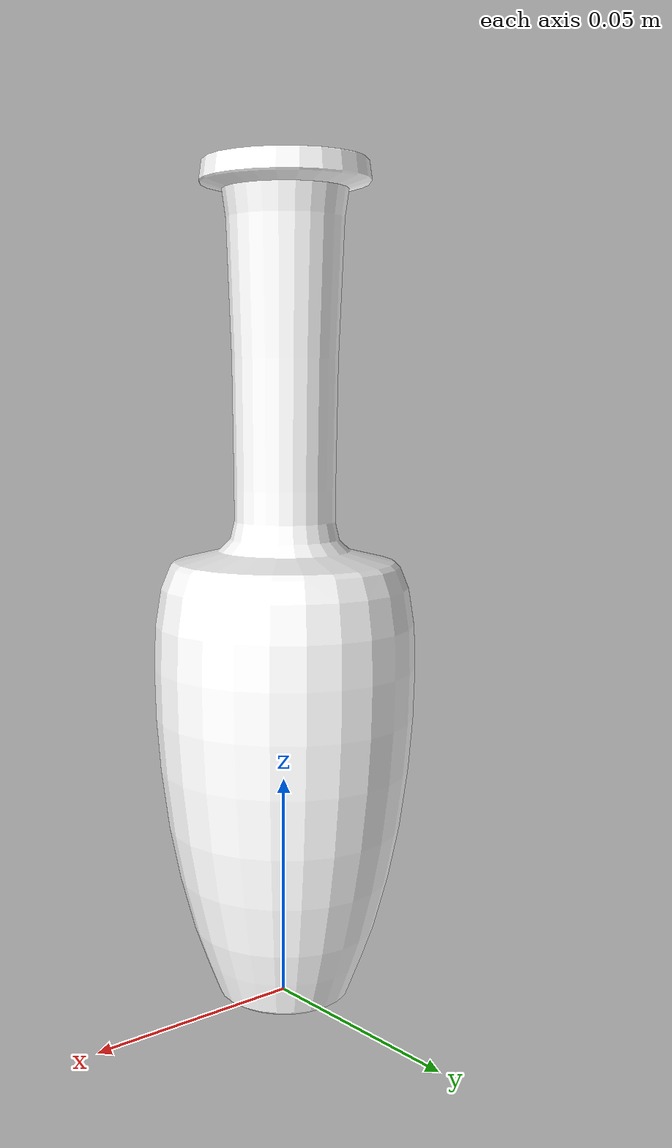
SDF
<?xml version="1.0"?>
<sdf version="1.6">
  <model name="Pot02">
    <static>false</static>
    <link name="base_link">
      <collision name="collision">
        <pose>0 0 0 0 0 0</pose>
        <geometry>
          <mesh>
            <uri>meshes/Pot02.dae</uri>
            <scale>0.2 0.2 0.2</scale>
          </mesh>
        </geometry>
      </collision>
      <visual name= "Cylinder001_visual">
        <geometry>
          <mesh>
            <uri>meshes/Pot02.dae</uri>
            <scale>0.2 0.2 0.2</scale>
          </mesh>
        </geometry>
        <material>
          <diffuse>1.0 1.0 1.0</diffuse>
          <specular>1.0 1.0 1.0</specular>
          <pbr>
            <metal>
              <albedo_map>materials/textures/Pot02_Albedo.png</albedo_map>
              <normal_map>materials/textures/Pot02_Normal.png</normal_map>
              <roughness_map>materials/textures/Pot02_Roughness.png</roughness_map>
            </metal>
          </pbr>
          <!-- fallback to script if no PBR support-->
          <script>
            <uri>materials/scripts/</uri>
            <uri>materials/textures/</uri>
            <name>UrbanTile/Pot02_Diffuse</name>
          </script>
        </material>
      </visual>
    </link>
  </model>
</sdf>
